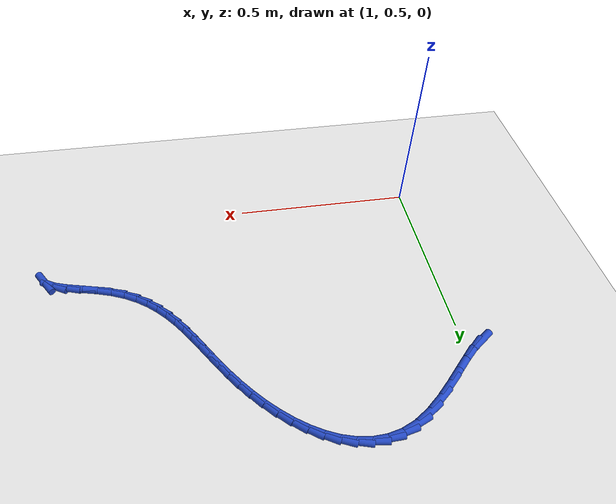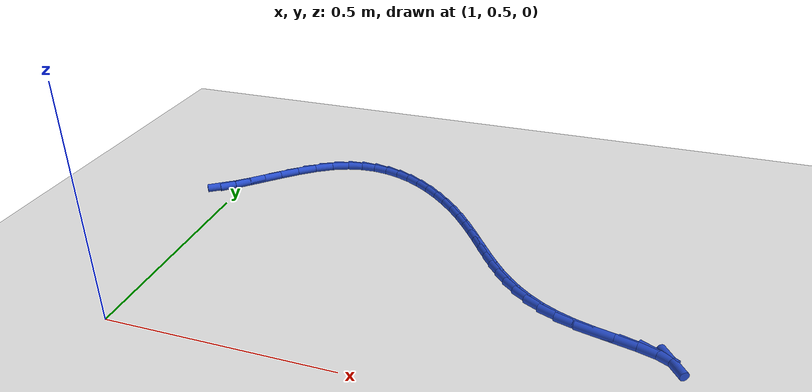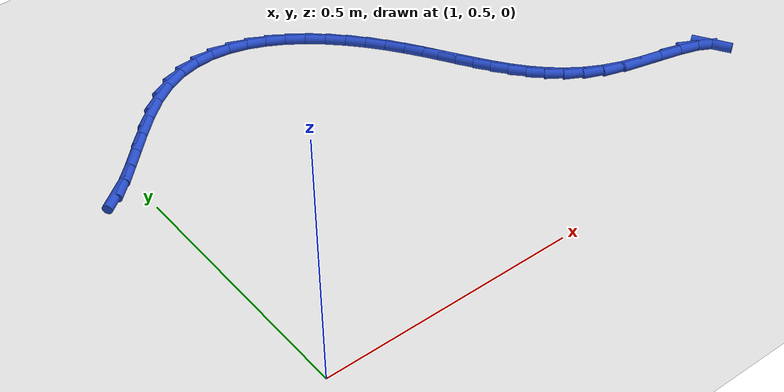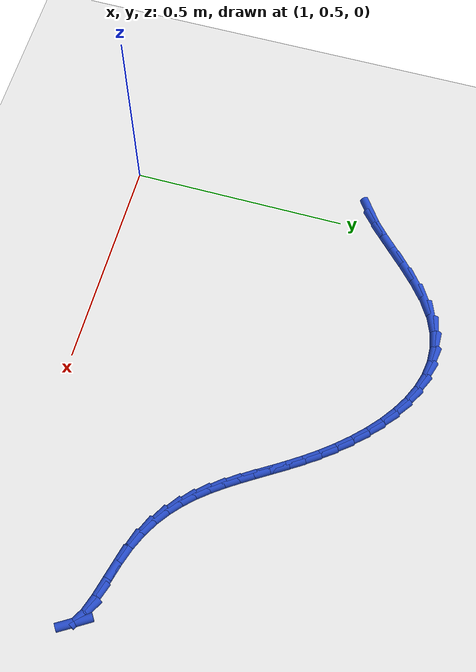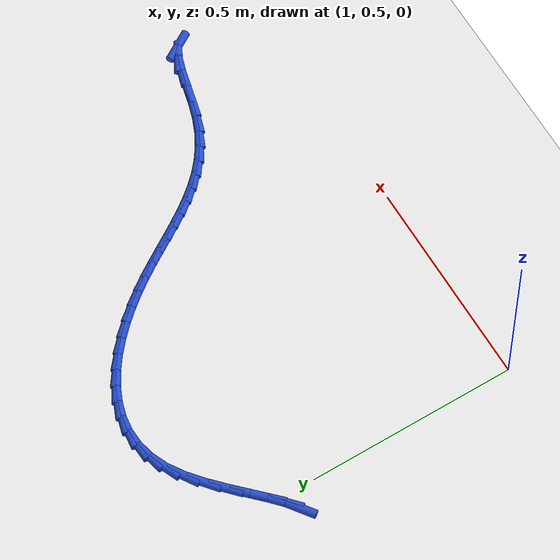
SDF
<sdf version="1.6">
 <world name="default">
  <model name="ground_plane">
   <static>1</static>
   <link name="link">
    <collision name="collision">
     <geometry><plane><normal>0 0 1</normal><size>100 100</size></plane></geometry>
     <surface><friction><ode><mu>100</mu><mu2>50</mu2></ode></friction></surface>
    </collision>
    <visual name="visual">
     <cast_shadows>0</cast_shadows>
     <geometry><plane><normal>0 0 1</normal><size>100 100</size></plane></geometry>
     <material>
      <script><uri>file://media/materials/scripts/gazebo.material</uri><name>Gazebo/WhiteGlow</name></script>
     </material>
    </visual>
   </link>
  </model>
  <model name="line">
   <link name="link_56">
    <pose>0.9576565449408468 1.0624745390301613 0.01 0 1.57 0.6253300588567127</pose>
    <collision name="collision">
     <geometry><cylinder><radius>0.01</radius><length>0.08</length></cylinder></geometry>
    </collision>
    <visual name="visual">
     <material>
      <script><name>Gazebo/Blue</name><uri>file://media/materials/scripts/gazebo.material</uri></script>
     </material>
     <geometry><cylinder><radius>0.01</radius><length>0.08</length></cylinder></geometry>
    </visual>
   </link>
   <link name="link_57">
    <pose>0.9830283601473826 1.08079264526747 0.01 0 1.57 0.7384748070590244</pose>
    <collision name="collision">
     <geometry><cylinder><radius>0.01</radius><length>0.08</length></cylinder></geometry>
    </collision>
    <visual name="visual">
     <material>
      <script><name>Gazebo/Blue</name><uri>file://media/materials/scripts/gazebo.material</uri></script>
     </material>
     <geometry><cylinder><radius>0.01</radius><length>0.08</length></cylinder></geometry>
    </visual>
   </link>
   <link name="link_58">
    <pose>1.0121536025883622 1.107305255156816 0.01 0 1.57 0.7790626682001327</pose>
    <collision name="collision">
     <geometry><cylinder><radius>0.01</radius><length>0.08</length></cylinder></geometry>
    </collision>
    <visual name="visual">
     <material>
      <script><name>Gazebo/Blue</name><uri>file://media/materials/scripts/gazebo.material</uri></script>
     </material>
     <geometry><cylinder><radius>0.01</radius><length>0.08</length></cylinder></geometry>
    </visual>
   </link>
   <link name="link_59">
    <pose>1.044354268578048 1.1391004701252971 0.01 0 1.57 0.7791134992978405</pose>
    <collision name="collision">
     <geometry><cylinder><radius>0.01</radius><length>0.08</length></cylinder></geometry>
    </collision>
    <visual name="visual">
     <material>
      <script><name>Gazebo/Blue</name><uri>file://media/materials/scripts/gazebo.material</uri></script>
     </material>
     <geometry><cylinder><radius>0.01</radius><length>0.08</length></cylinder></geometry>
    </visual>
   </link>
   <link name="link_60">
    <pose>1.0789523544307038 1.17326639160001 0.01 0 1.57 0.7469172156542614</pose>
    <collision name="collision">
     <geometry><cylinder><radius>0.01</radius><length>0.08</length></cylinder></geometry>
    </collision>
    <visual name="visual">
     <material>
      <script><name>Gazebo/Blue</name><uri>file://media/materials/scripts/gazebo.material</uri></script>
     </material>
     <geometry><cylinder><radius>0.01</radius><length>0.08</length></cylinder></geometry>
    </visual>
   </link>
   <link name="link_61">
    <pose>1.1152698564605923 1.2068911210080524 0.01 0 1.57 0.679367325697816</pose>
    <collision name="collision">
     <geometry><cylinder><radius>0.01</radius><length>0.08</length></cylinder></geometry>
    </collision>
    <visual name="visual">
     <material>
      <script><name>Gazebo/Blue</name><uri>file://media/materials/scripts/gazebo.material</uri></script>
     </material>
     <geometry><cylinder><radius>0.01</radius><length>0.08</length></cylinder></geometry>
    </visual>
   </link>
   <link name="link_62">
    <pose>1.1526287709819751 1.2370627597765207 0.01 0 1.57 0.5632754730702765</pose>
    <collision name="collision">
     <geometry><cylinder><radius>0.01</radius><length>0.08</length></cylinder></geometry>
    </collision>
    <visual name="visual">
     <material>
      <script><name>Gazebo/Blue</name><uri>file://media/materials/scripts/gazebo.material</uri></script>
     </material>
     <geometry><cylinder><radius>0.01</radius><length>0.08</length></cylinder></geometry>
    </visual>
   </link>
   <link name="link_63">
    <pose>1.1903535713489202 1.2608867970132862 0.01 0 1.57 0.3988650520871717</pose>
    <collision name="collision">
     <geometry><cylinder><radius>0.01</radius><length>0.08</length></cylinder></geometry>
    </collision>
    <visual name="visual">
     <material>
      <script><name>Gazebo/Blue</name><uri>file://media/materials/scripts/gazebo.material</uri></script>
     </material>
     <geometry><cylinder><radius>0.01</radius><length>0.08</length></cylinder></geometry>
    </visual>
   </link>
   <link name="link_64">
    <pose>1.2279486194932527 1.2767314569509989 0.01 0 1.57 0.21986535917009523</pose>
    <collision name="collision">
     <geometry><cylinder><radius>0.01</radius><length>0.08</length></cylinder></geometry>
    </collision>
    <visual name="visual">
     <material>
      <script><name>Gazebo/Blue</name><uri>file://media/materials/scripts/gazebo.material</uri></script>
     </material>
     <geometry><cylinder><radius>0.01</radius><length>0.08</length></cylinder></geometry>
    </visual>
   </link>
   <link name="link_65">
    <pose>1.2652167443375506 1.285060064898213 0.01 0 1.57 0.040042610725634774</pose>
    <collision name="collision">
     <geometry><cylinder><radius>0.01</radius><length>0.08</length></cylinder></geometry>
    </collision>
    <visual name="visual">
     <material>
      <script><name>Gazebo/Blue</name><uri>file://media/materials/scripts/gazebo.material</uri></script>
     </material>
     <geometry><cylinder><radius>0.01</radius><length>0.08</length></cylinder></geometry>
    </visual>
   </link>
   <link name="link_66">
    <pose>1.301988890456632 1.2865333051180181 0.01 0 1.57 -0.13002440517231106</pose>
    <collision name="collision">
     <geometry><cylinder><radius>0.01</radius><length>0.08</length></cylinder></geometry>
    </collision>
    <visual name="visual">
     <material>
      <script><name>Gazebo/Blue</name><uri>file://media/materials/scripts/gazebo.material</uri></script>
     </material>
     <geometry><cylinder><radius>0.01</radius><length>0.08</length></cylinder></geometry>
    </visual>
   </link>
   <link name="link_67">
    <pose>1.338096002425314 1.2818118618735044 0.01 0 1.57 -0.2829441654766275</pose>
    <collision name="collision">
     <geometry><cylinder><radius>0.01</radius><length>0.08</length></cylinder></geometry>
    </collision>
    <visual name="visual">
     <material>
      <script><name>Gazebo/Blue</name><uri>file://media/materials/scripts/gazebo.material</uri></script>
     </material>
     <geometry><cylinder><radius>0.01</radius><length>0.08</length></cylinder></geometry>
    </visual>
   </link>
   <link name="link_68">
    <pose>1.3733690248184145 1.2715564194277609 0.01 0 1.57 -0.4157288522501016</pose>
    <collision name="collision">
     <geometry><cylinder><radius>0.01</radius><length>0.08</length></cylinder></geometry>
    </collision>
    <visual name="visual">
     <material>
      <script><name>Gazebo/Blue</name><uri>file://media/materials/scripts/gazebo.material</uri></script>
     </material>
     <geometry><cylinder><radius>0.01</radius><length>0.08</length></cylinder></geometry>
    </visual>
   </link>
   <link name="link_69">
    <pose>1.4076389022107507 1.2564276620438777 0.01 0 1.57 -0.5288497909851001</pose>
    <collision name="collision">
     <geometry><cylinder><radius>0.01</radius><length>0.08</length></cylinder></geometry>
    </collision>
    <visual name="visual">
     <material>
      <script><name>Gazebo/Blue</name><uri>file://media/materials/scripts/gazebo.material</uri></script>
     </material>
     <geometry><cylinder><radius>0.01</radius><length>0.08</length></cylinder></geometry>
    </visual>
   </link>
   <link name="link_70">
    <pose>1.4407365791771416 1.2370862739849444 0.01 0 1.57 -0.6246182331080261</pose>
    <collision name="collision">
     <geometry><cylinder><radius>0.01</radius><length>0.08</length></cylinder></geometry>
    </collision>
    <visual name="visual">
     <material>
      <script><name>Gazebo/Blue</name><uri>file://media/materials/scripts/gazebo.material</uri></script>
     </material>
     <geometry><cylinder><radius>0.01</radius><length>0.08</length></cylinder></geometry>
    </visual>
   </link>
   <link name="link_71">
    <pose>1.472493000292403 1.2141929395140507 0.01 0 1.57 -0.7059395942081172</pose>
    <collision name="collision">
     <geometry><cylinder><radius>0.01</radius><length>0.08</length></cylinder></geometry>
    </collision>
    <visual name="visual">
     <material>
      <script><name>Gazebo/Blue</name><uri>file://media/materials/scripts/gazebo.material</uri></script>
     </material>
     <geometry><cylinder><radius>0.01</radius><length>0.08</length></cylinder></geometry>
    </visual>
   </link>
   <link name="link_72">
    <pose>1.5027391101313545 1.1884083428942864 0.01 0 1.57 -0.7756503290236942</pose>
    <collision name="collision">
     <geometry><cylinder><radius>0.01</radius><length>0.08</length></cylinder></geometry>
    </collision>
    <visual name="visual">
     <material>
      <script><name>Gazebo/Blue</name><uri>file://media/materials/scripts/gazebo.material</uri></script>
     </material>
     <geometry><cylinder><radius>0.01</radius><length>0.08</length></cylinder></geometry>
    </visual>
   </link>
   <link name="link_73">
    <pose>1.531305853268812 1.1603931683887407 0.01 0 1.57 -0.8362702993724037</pose>
    <collision name="collision">
     <geometry><cylinder><radius>0.01</radius><length>0.08</length></cylinder></geometry>
    </collision>
    <visual name="visual">
     <material>
      <script><name>Gazebo/Blue</name><uri>file://media/materials/scripts/gazebo.material</uri></script>
     </material>
     <geometry><cylinder><radius>0.01</radius><length>0.08</length></cylinder></geometry>
    </visual>
   </link>
   <link name="link_74">
    <pose>1.5580241742795946 1.1308081002605035 0.01 0 1.57 -0.8899776875668131</pose>
    <collision name="collision">
     <geometry><cylinder><radius>0.01</radius><length>0.08</length></cylinder></geometry>
    </collision>
    <visual name="visual">
     <material>
      <script><name>Gazebo/Blue</name><uri>file://media/materials/scripts/gazebo.material</uri></script>
     </material>
     <geometry><cylinder><radius>0.01</radius><length>0.08</length></cylinder></geometry>
    </visual>
   </link>
   <link name="link_75">
    <pose>1.5827250516421976 1.1003138015912173 0.01 0 1.57 -0.9371367921592106</pose>
    <collision name="collision">
     <geometry><cylinder><radius>0.01</radius><length>0.08</length></cylinder></geometry>
    </collision>
    <visual name="visual">
     <material>
      <script><name>Gazebo/Blue</name><uri>file://media/materials/scripts/gazebo.material</uri></script>
     </material>
     <geometry><cylinder><radius>0.01</radius><length>0.08</length></cylinder></geometry>
    </visual>
   </link>
   <link name="link_76">
    <pose>1.6053752177663694 1.0694861226941756 0.01 0 1.57 -0.9730926796898597</pose>
    <collision name="collision">
     <geometry><cylinder><radius>0.01</radius><length>0.08</length></cylinder></geometry>
    </collision>
    <visual name="visual">
     <material>
      <script><name>Gazebo/Blue</name><uri>file://media/materials/scripts/gazebo.material</uri></script>
     </material>
     <geometry><cylinder><radius>0.01</radius><length>0.08</length></cylinder></geometry>
    </visual>
   </link>
   <link name="link_77">
    <pose>1.6263857073085288 1.0386233344183018 0.01 0 1.57 -0.9956606418742899</pose>
    <collision name="collision">
     <geometry><cylinder><radius>0.01</radius><length>0.08</length></cylinder></geometry>
    </collision>
    <visual name="visual">
     <material>
      <script><name>Gazebo/Blue</name><uri>file://media/materials/scripts/gazebo.material</uri></script>
     </material>
     <geometry><cylinder><radius>0.01</radius><length>0.08</length></cylinder></geometry>
    </visual>
   </link>
   <link name="link_78">
    <pose>1.6462583074697887 1.0079670096261035 0.01 0 1.57 -1.003759882167679</pose>
    <collision name="collision">
     <geometry><cylinder><radius>0.01</radius><length>0.08</length></cylinder></geometry>
    </collision>
    <visual name="visual">
     <material>
      <script><name>Gazebo/Blue</name><uri>file://media/materials/scripts/gazebo.material</uri></script>
     </material>
     <geometry><cylinder><radius>0.01</radius><length>0.08</length></cylinder></geometry>
    </visual>
   </link>
   <link name="link_79">
    <pose>1.665494805451259 0.9777587211800898 0.01 0 1.57 -0.9964470555611571</pose>
    <collision name="collision">
     <geometry><cylinder><radius>0.01</radius><length>0.08</length></cylinder></geometry>
    </collision>
    <visual name="visual">
     <material>
      <script><name>Gazebo/Blue</name><uri>file://media/materials/scripts/gazebo.material</uri></script>
     </material>
     <geometry><cylinder><radius>0.01</radius><length>0.08</length></cylinder></geometry>
    </visual>
   </link>
   <link name="link_80">
    <pose>1.684596988454051 0.9482400419427679 0.01 0 1.57 -0.9728986692038603</pose>
    <collision name="collision">
     <geometry><cylinder><radius>0.01</radius><length>0.08</length></cylinder></geometry>
    </collision>
    <visual name="visual">
     <material>
      <script><name>Gazebo/Blue</name><uri>file://media/materials/scripts/gazebo.material</uri></script>
     </material>
     <geometry><cylinder><radius>0.01</radius><length>0.08</length></cylinder></geometry>
    </visual>
   </link>
   <link name="link_81">
    <pose>1.704066643679277 0.9196525447766475 0.01 0 1.57 -0.9325013487352175</pose>
    <collision name="collision">
     <geometry><cylinder><radius>0.01</radius><length>0.08</length></cylinder></geometry>
    </collision>
    <visual name="visual">
     <material>
      <script><name>Gazebo/Blue</name><uri>file://media/materials/scripts/gazebo.material</uri></script>
     </material>
     <geometry><cylinder><radius>0.01</radius><length>0.08</length></cylinder></geometry>
    </visual>
   </link>
   <link name="link_82">
    <pose>1.7244055583280469 0.8922378025442362 0.01 0 1.57 -0.8750839695377994</pose>
    <collision name="collision">
     <geometry><cylinder><radius>0.01</radius><length>0.08</length></cylinder></geometry>
    </collision>
    <visual name="visual">
     <material>
      <script><name>Gazebo/Blue</name><uri>file://media/materials/scripts/gazebo.material</uri></script>
     </material>
     <geometry><cylinder><radius>0.01</radius><length>0.08</length></cylinder></geometry>
    </visual>
   </link>
   <link name="link_83">
    <pose>1.7461155196014728 0.8662373881080417 0.01 0 1.57 -0.8012900332028641</pose>
    <collision name="collision">
     <geometry><cylinder><radius>0.01</radius><length>0.08</length></cylinder></geometry>
    </collision>
    <visual name="visual">
     <material>
      <script><name>Gazebo/Blue</name><uri>file://media/materials/scripts/gazebo.material</uri></script>
     </material>
     <geometry><cylinder><radius>0.01</radius><length>0.08</length></cylinder></geometry>
    </visual>
   </link>
   <link name="link_84">
    <pose>1.7696983147006649 0.8418928743305734 0.01 0 1.57 -0.7130031543926194</pose>
    <collision name="collision">
     <geometry><cylinder><radius>0.01</radius><length>0.08</length></cylinder></geometry>
    </collision>
    <visual name="visual">
     <material>
      <script><name>Gazebo/Blue</name><uri>file://media/materials/scripts/gazebo.material</uri></script>
     </material>
     <geometry><cylinder><radius>0.01</radius><length>0.08</length></cylinder></geometry>
    </visual>
   </link>
   <link name="link_85">
    <pose>1.7956557308267347 0.8194458340743387 0.01 0 1.57 -0.6136137263822117</pose>
    <collision name="collision">
     <geometry><cylinder><radius>0.01</radius><length>0.08</length></cylinder></geometry>
    </collision>
    <visual name="visual">
     <material>
      <script><name>Gazebo/Blue</name><uri>file://media/materials/scripts/gazebo.material</uri></script>
     </material>
     <geometry><cylinder><radius>0.01</radius><length>0.08</length></cylinder></geometry>
    </visual>
   </link>
   <link name="link_86">
    <pose>1.824489555180794 0.7991378402018466 0.01 0 1.57 -0.5078527565297418</pose>
    <collision name="collision">
     <geometry><cylinder><radius>0.01</radius><length>0.08</length></cylinder></geometry>
    </collision>
    <visual name="visual">
     <material>
      <script><name>Gazebo/Blue</name><uri>file://media/materials/scripts/gazebo.material</uri></script>
     </material>
     <geometry><cylinder><radius>0.01</radius><length>0.08</length></cylinder></geometry>
    </visual>
   </link>
   <link name="link_87">
    <pose>1.8567015749639535 0.7812104655756047 0.01 0 1.57 -0.40107437690628295</pose>
    <collision name="collision">
     <geometry><cylinder><radius>0.01</radius><length>0.08</length></cylinder></geometry>
    </collision>
    <visual name="visual">
     <material>
      <script><name>Gazebo/Blue</name><uri>file://media/materials/scripts/gazebo.material</uri></script>
     </material>
     <geometry><cylinder><radius>0.01</radius><length>0.08</length></cylinder></geometry>
    </visual>
   </link>
   <link name="link_88">
    <pose>1.892793577377324 0.765905283058122 0.01 0 1.57 -0.30078233394802706</pose>
    <collision name="collision">
     <geometry><cylinder><radius>0.01</radius><length>0.08</length></cylinder></geometry>
    </collision>
    <visual name="visual">
     <material>
      <script><name>Gazebo/Blue</name><uri>file://media/materials/scripts/gazebo.material</uri></script>
     </material>
     <geometry><cylinder><radius>0.01</radius><length>0.08</length></cylinder></geometry>
    </visual>
   </link>
   <link name="link_89">
    <pose>1.933111053388371 0.7533990579382808 0.01 0 1.57 -0.24277610697155083</pose>
    <collision name="collision">
     <geometry><cylinder><radius>0.01</radius><length>0.08</length></cylinder></geometry>
    </collision>
    <visual name="visual">
     <material>
      <script><name>Gazebo/Blue</name><uri>file://media/materials/scripts/gazebo.material</uri></script>
     </material>
     <geometry><cylinder><radius>0.01</radius><length>0.08</length></cylinder></geometry>
    </visual>
   </link>
   <link name="link_90">
    <pose>1.9756039023808925 0.7428752335655118 0.01 0 1.57 -0.243795423284671</pose>
    <collision name="collision">
     <geometry><cylinder><radius>0.01</radius><length>0.08</length></cylinder></geometry>
    </collision>
    <visual name="visual">
     <material>
      <script><name>Gazebo/Blue</name><uri>file://media/materials/scripts/gazebo.material</uri></script>
     </material>
     <geometry><cylinder><radius>0.01</radius><length>0.08</length></cylinder></geometry>
    </visual>
   </link>
   <link name="link_91">
    <pose>2.016348331552834 0.7327403347323923 0.01 0 1.57 -0.31366140332991893</pose>
    <collision name="collision">
     <geometry><cylinder><radius>0.01</radius><length>0.08</length></cylinder></geometry>
    </collision>
    <visual name="visual">
     <material>
      <script><name>Gazebo/Blue</name><uri>file://media/materials/scripts/gazebo.material</uri></script>
     </material>
     <geometry><cylinder><radius>0.01</radius><length>0.08</length></cylinder></geometry>
    </visual>
   </link>
   <link name="link_92">
    <pose>2.0513706113413965 0.721380180164419 0.01 0 1.57 -0.5109933708149391</pose>
    <collision name="collision">
     <geometry><cylinder><radius>0.01</radius><length>0.08</length></cylinder></geometry>
    </collision>
    <visual name="visual">
     <material>
      <script><name>Gazebo/Blue</name><uri>file://media/materials/scripts/gazebo.material</uri></script>
     </material>
     <geometry><cylinder><radius>0.01</radius><length>0.08</length></cylinder></geometry>
    </visual>
   </link>
   <link name="link_93">
    <pose>2.076697012183784 0.707180588587088 0.01 0 1.57 -1.0121040043869152</pose>
    <collision name="collision">
     <geometry><cylinder><radius>0.01</radius><length>0.08</length></cylinder></geometry>
    </collision>
    <visual name="visual">
     <material>
      <script><name>Gazebo/Blue</name><uri>file://media/materials/scripts/gazebo.material</uri></script>
     </material>
     <geometry><cylinder><radius>0.01</radius><length>0.08</length></cylinder></geometry>
    </visual>
   </link>
  </model>
 </world>
</sdf>
